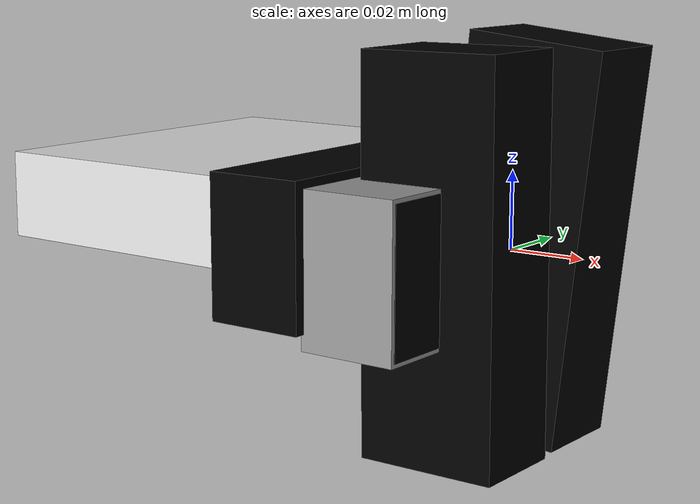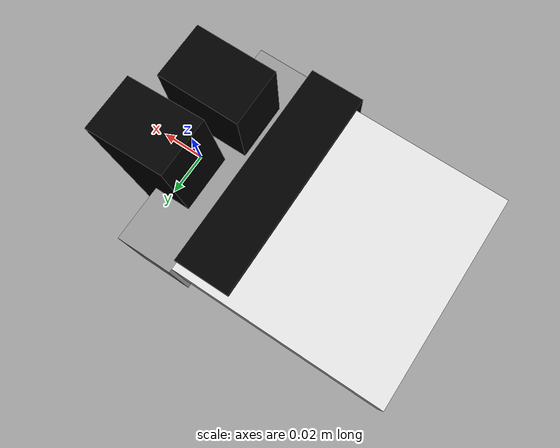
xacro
<?xml version="1.0"?>
<!--
 Copyright (c) Microsoft Corporation. All rights reserved.
 Licensed under the MIT License.
 -->

<robot name="azure-kinect" xmlns:xacro="http://www.ros.org/wiki/xacro">
  <!-- tf名称的前缀 -->
  <xacro:arg name="tf_prefix" default=""/>

  <!-- 设置颜色 -->
  <material name="black">
    <color rgba="0. 0. 0. 1" />
  </material>
  <material name="dark_grey">
    <color rgba="0.1 0.1 0.1 1" />
  </material>
  <material name="grey">
    <color rgba="0.6 0.6 0.6 1" />
  </material>
  <material name="white">
    <color rgba="0.9 0.9 0.9 1" />
  </material>

  <!-- 设定camera_body（相机原点）、camera_base、camera_visor -->
  <link name="$(arg tf_prefix)camera_body">
    <visual>
      <origin xyz="0. 0. 0." />
      <geometry>
        <box size="0.0994 0.0996 0.023" />
      </geometry>
      <material name="white" />
    </visual>
  </link>

  <link name="$(arg tf_prefix)camera_base">
    <visual>
      <origin xyz="-0.013 0. 0." />
      <geometry>
        <box size="0.026 0.103 0.039" />
      </geometry>
      <material name="grey" />
    </visual>
  </link>

  <link name="$(arg tf_prefix)camera_visor">
    <visual>
      <origin xyz="-0.0128 0. 0." />
      <geometry>
        <box size="0.026 0.101 0.037" />
      </geometry>
      <material name="black" />
    </visual>
  </link>

    <link name="$(arg tf_prefix)depth_camera_link_record">
    <visual>
      <origin xyz="-0.0128 0. 0." />
      <geometry>
        <box size="0.026 0.101 0.037" />
      </geometry>
      <material name="black" />
    </visual>
  </link>

  <link name="$(arg tf_prefix)imu_link_record">
    <visual>
      <origin xyz="-0.0128 0. 0." />
      <geometry>
        <box size="0.026 0.101 0.037" />
      </geometry>
      <material name="black" />
    </visual>
  </link>

    <link name="$(arg tf_prefix)rgb_camera_link_record">
    <visual>
      <origin xyz="-0.0128 0. 0." />
      <geometry>
        <box size="0.026 0.101 0.037" />
      </geometry>
      <material name="black" />
    </visual>
  </link>

  <joint name="$(arg tf_prefix)camera_base_to_body" type="fixed">
    <parent link="$(arg tf_prefix)camera_base" />
    <child link="$(arg tf_prefix)camera_body" />
    <origin xyz="-0.0757 0. 0.008" rpy="0. 0. 0." />
  </joint>

  <joint name="$(arg tf_prefix)camera_base_to_visor" type="fixed">
    <parent link="$(arg tf_prefix)camera_base" />
    <child link="$(arg tf_prefix)camera_visor" />
    <origin xyz="0. 0. 0." rpy="0. 0. 0." />
  </joint>

  <joint name="$(arg tf_prefix)camera_base_to_depth" type="fixed">
    <parent link="$(arg tf_prefix)camera_base" />
    <child link="$(arg tf_prefix)depth_camera_link_record" />
    <origin xyz="0. 0.0 0.002" rpy="-1.676 0. -1.571" />
  </joint>

  <joint name="$(arg tf_prefix)depth_to_imu" type="fixed">
    <parent link="$(arg tf_prefix)depth_camera_link_record" />
    <child link="$(arg tf_prefix)imu_link_record" />
    <origin xyz="0.004 0.004 -0.051" rpy="-0.025 1.464 1.551" />
  </joint>

  <joint name="$(arg tf_prefix)depth_base_to_rgb" type="fixed">
    <parent link="$(arg tf_prefix)depth_camera_link_record" />
    <child link="$(arg tf_prefix)rgb_camera_link_record" />
    <origin xyz="0.032 0.002 -0.004" rpy="0.112 -0.001 0.003" />
  </joint>

</robot>
